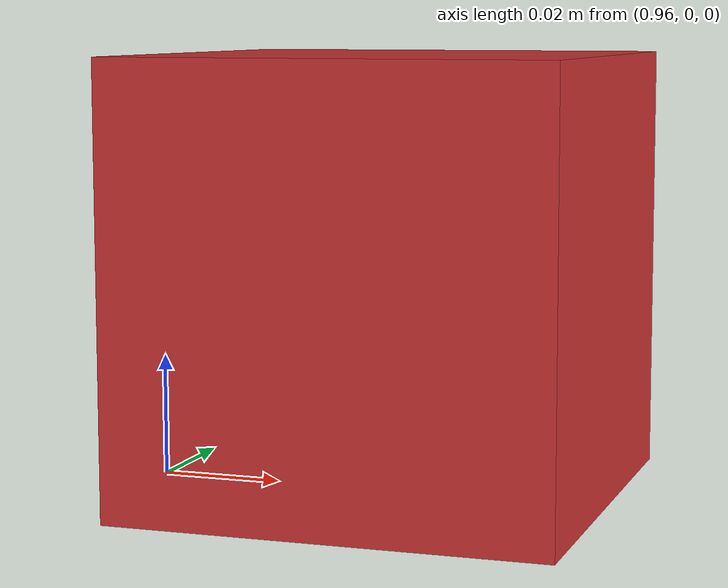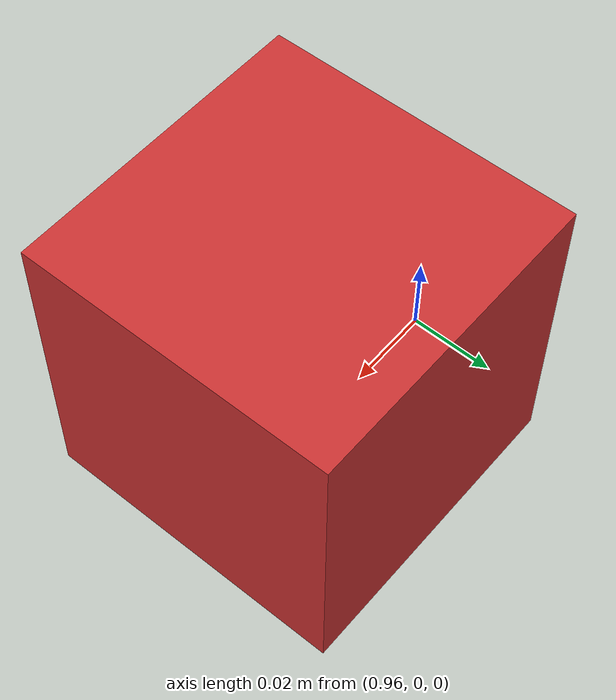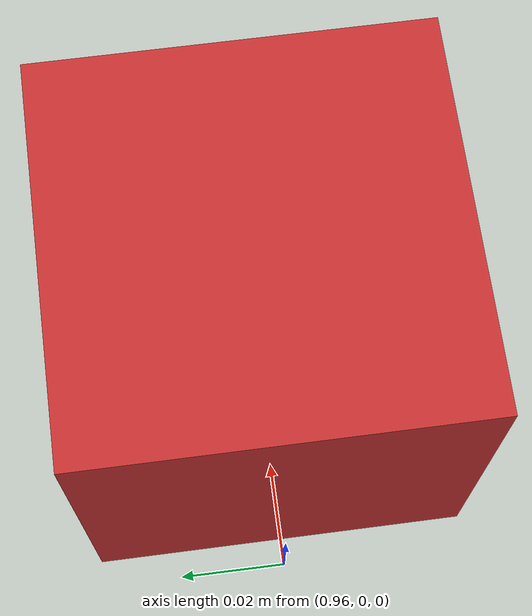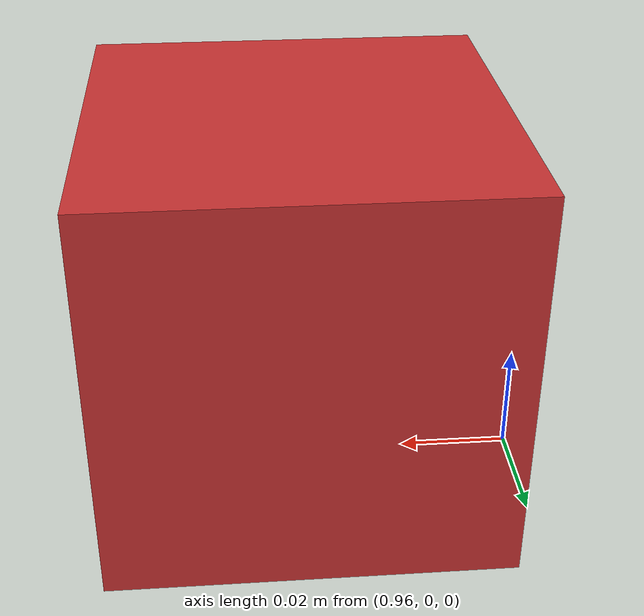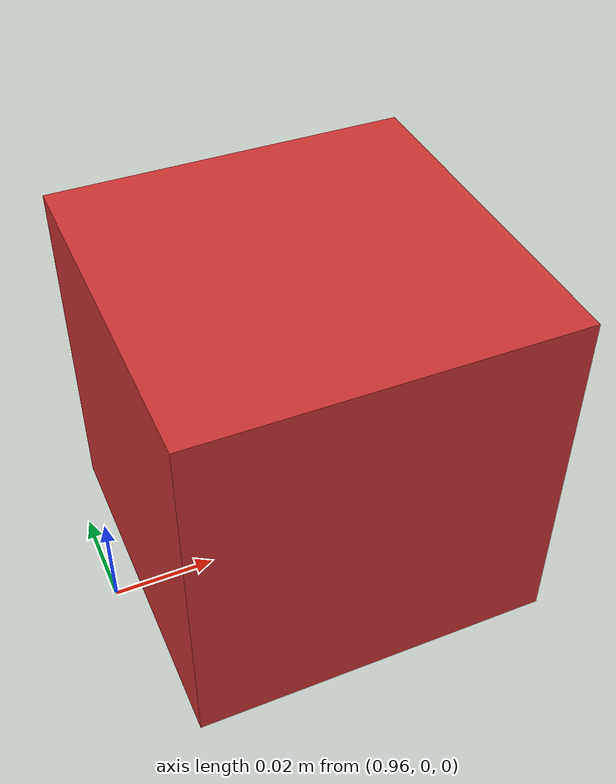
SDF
<?xml version="1.0"?>
<sdf version="1.6">
  <model name="obstacle_box">
    <!-- 位置：x y z，z = 0.07/2 = 0.035，使方块刚好落地 -->
    <pose>1 0 0.035 0 0 0</pose>

    <link name="link">
      <inertial>
        <mass>0.25</mass>
        <!-- 均匀立方体惯性矩：I = 1/6 * m * L^2 -->
        <inertia>
          <ixx>0.0002</ixx>
          <iyy>0.0002</iyy>
          <izz>0.0002</izz>
          <ixy>0</ixy>
          <ixz>0</ixz>
          <iyz>0</iyz>
        </inertia>
      </inertial>

      <collision name="collision">
        <geometry>
          <box>
            <size>0.07 0.07 0.07</size>
          </box>
        </geometry>
        <surface>
          <contact>
            <ode/>
          </contact>
          <friction>
            <ode>
              <!-- 摩擦系数 -->
              <mu>0.2</mu>
              <mu2>0.2</mu2>
            </ode>
          </friction>
        </surface>
      </collision>

      <visual name="visual">
        <geometry>
          <box>
            <size>0.07 0.07 0.07</size>
          </box>
        </geometry>
        <material>
          <ambient>0.8 0.2 0.2 1</ambient>
          <diffuse>0.8 0.2 0.2 1</diffuse>
        </material>
      </visual>
    </link>
  </model>
</sdf>
